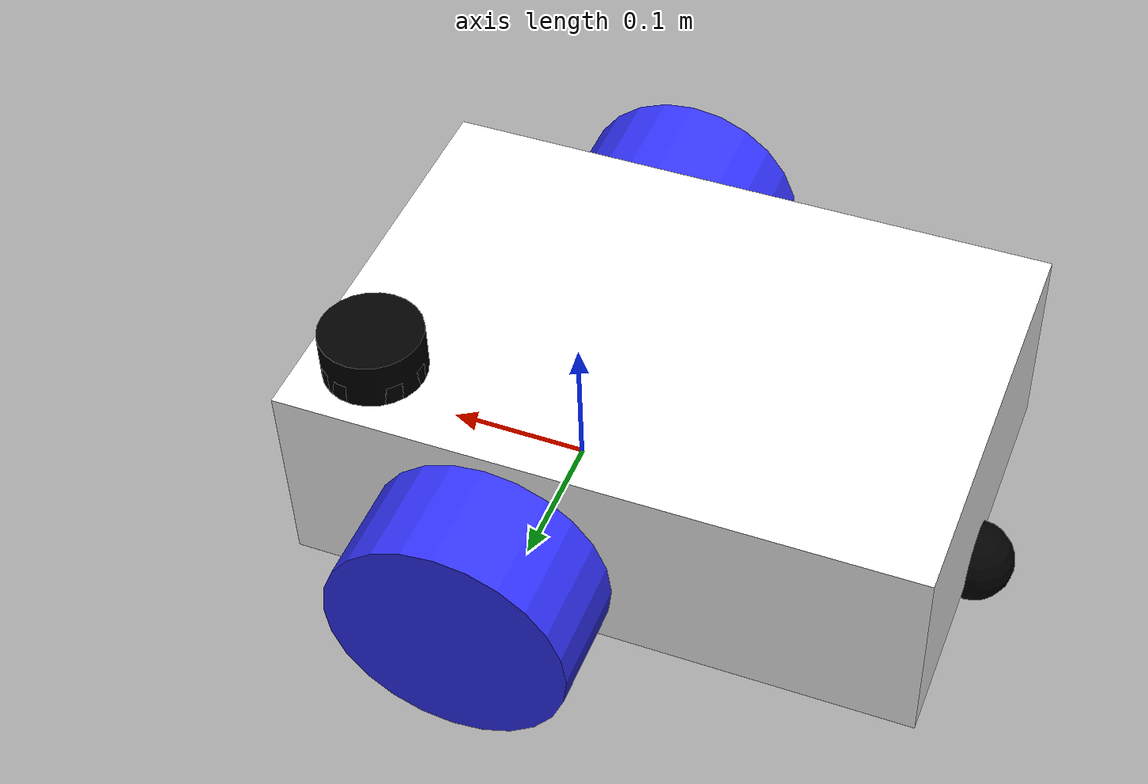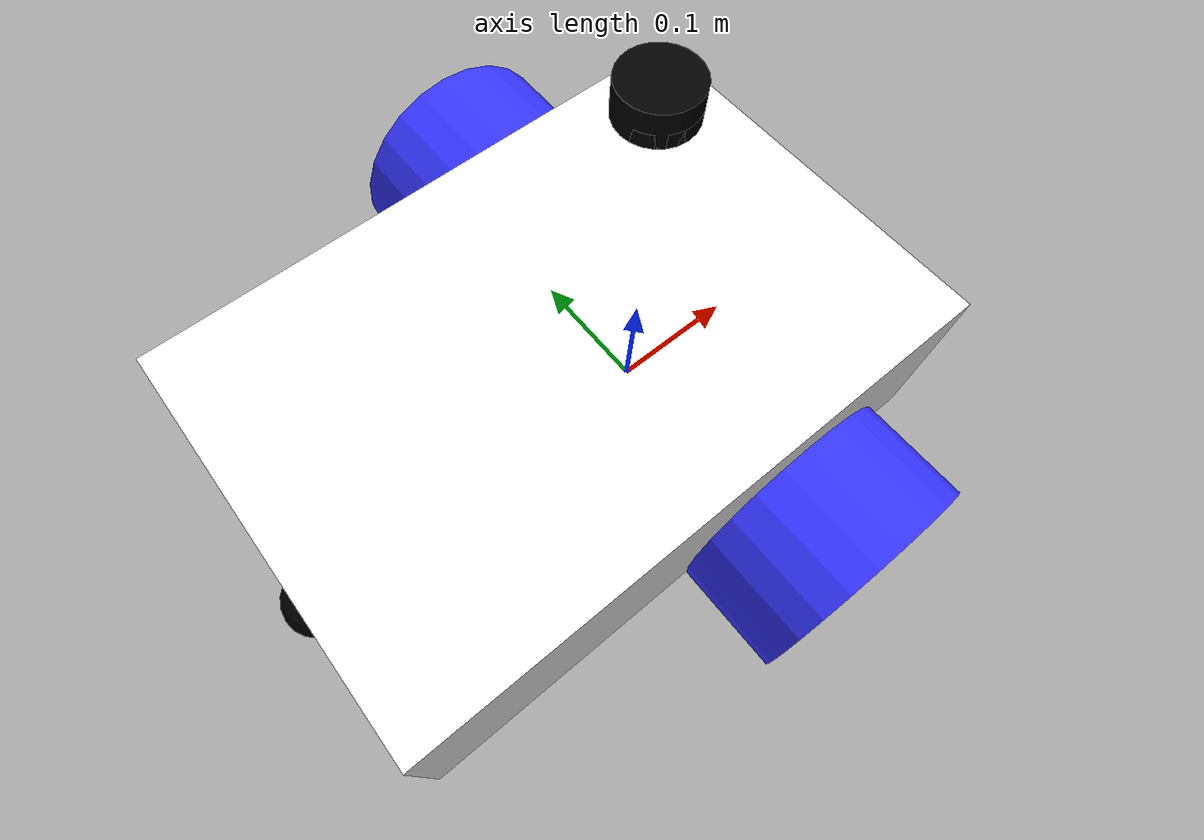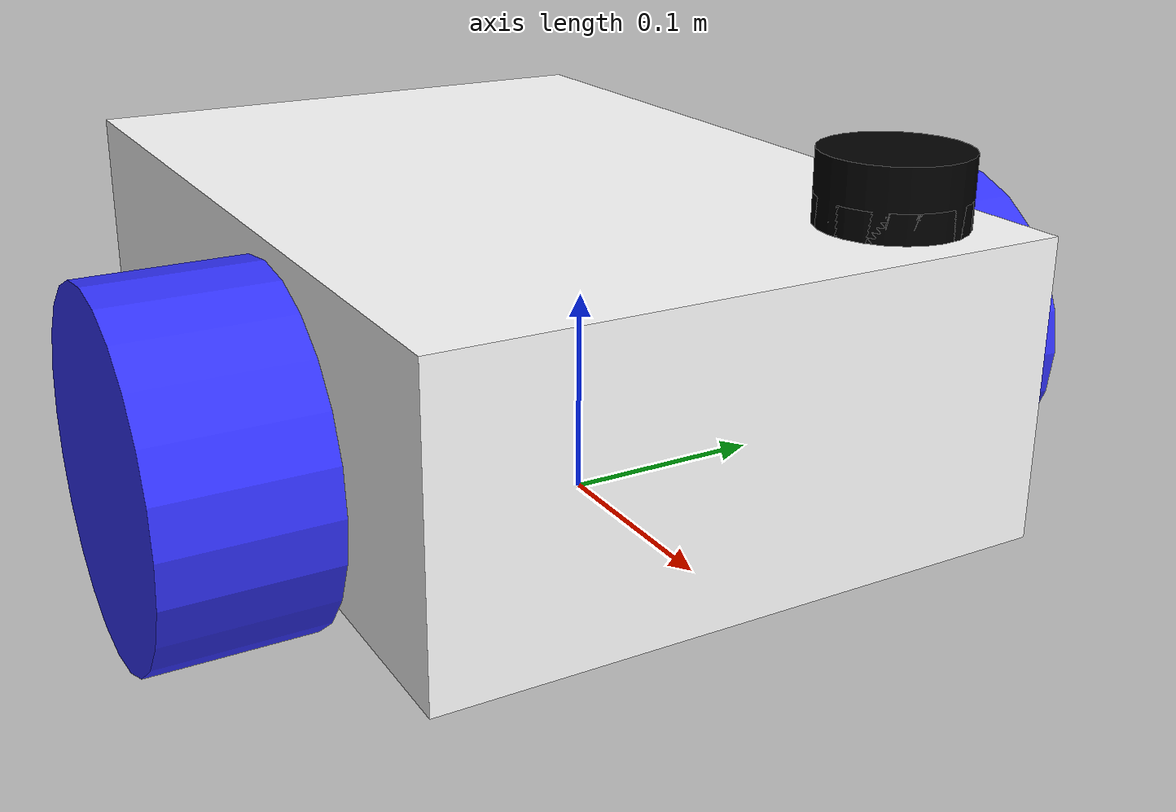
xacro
<?xml version="1.0"?>
<robot xmlns:xacro="http://www.ros.org/wiki/xacro"  name="robot">

    <xacro:include filename="robot_core.xacro"/>
    <xacro:include filename="lidar.xacro"/>
    <xacro:include filename="odrive.ros2_control.xacro" />
    <xacro:arg name="enable_joint0" default="true" />
    <xacro:arg name="enable_joint1" default="true" />

    <xacro:odrive_ros2_control
        name="odrive_ros2_control"
        enable_joint0="$(arg enable_joint0)"
        enable_joint1="$(arg enable_joint1)" />
</robot>

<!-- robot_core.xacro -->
<robot xmlns:xacro="http://www.ros.org/wiki/xacro">

    <xacro:include filename="inertial_macros.xacro"/>

    <material name="white">
        <color rgba="1 1 1 1"/>
    </material>

    <material name="orange">
        <color rgba="1 0.3 0.1 1"/>
    </material>

    <material name="blue">
        <color rgba="0.2 0.2 1 1"/>
    </material>

    <material name="black">
        <color rgba="0 0 0 1"/>
    </material>

    <!-- Base Link -->
    <link name="base_link">

    </link>

    <!-- Base_Footprint Link-->

    <joint name="base_footprint_joint" type="fixed">
	<parent link="base_link"/>
	<child link="base_footprint"/>
	<origin xyz="0 0 0" rpy="0 0 0"/>
    </joint>

    <link name="base_footprint">
    </link>

    <!-- Chassis Link -->

    <joint name="chassis_joint" type="fixed">
        <parent link="base_link"/>
        <child link="chassis"/>
        <origin xyz="-0.29 0 0"/>
    </joint>

    <link name="chassis">
        <visual>
            <origin xyz="0.22 0 0.074"/>
            <geometry>
                <box size="0.44 0.3 0.144"/>
            </geometry>
            <material name="white"/>
        </visual>

        <collision>
            <origin xyz="0.22 0 0.074"/>
            <geometry>
                <box size="0.44 0.3 0.144"/>
            </geometry>
        </collision>
        <xacro:inertial_box mass="2" x="0.44" y="0.3" z="0.144">
            <origin xyz="0.22 0 0.074" rpy="0 0 0"/>
        </xacro:inertial_box>
    </link>

    <gazebo reference="chassis">
        <material>Gazebo/White</material>
    </gazebo>

    <!-- Left Wheel Link -->

    <joint name="left_wheel_joint" type="continuous">
        <parent link="base_link"/>
        <child link="Left_wheel"/>
        <origin xyz="0 0.192 0.056" rpy="-${pi/2} 0 0"/>
        <axis xyz="0 0 1"/>
    </joint>

    <link name="Left_wheel">
        <visual>
            <geometry>
                <cylinder radius="0.084" length="0.077"/>
            </geometry>
            <material name="blue"/>
        </visual>

        <collision>
            <geometry>
                <cylinder radius="0.084" length="0.077"/>
            </geometry>
        </collision>
        <xacro:inertial_cylinder mass="0.5" length="0.077" radius="0.084">
            <origin xyz="0 0 0" rpy="0 0 0"/>
        </xacro:inertial_cylinder>
    </link>

    <gazebo reference="Left_wheel">
        <material>Gazebo/Blue</material>
    </gazebo>

    <!-- Right Wheel Link -->

    <joint name="right_wheel_joint" type="continuous">
        <parent link="base_link"/>
        <child link="Right_wheel"/>
        <origin xyz="0 -0.192 0.056" rpy="${pi/2} 0 0"/>
        <axis xyz="0 0 -1"/>
    </joint>

    <link name="Right_wheel">
        <visual>
            <geometry>
                <cylinder radius="0.084" length="0.077"/>
            </geometry>
            <material name="blue"/>
        </visual>
        <collision>
            <geometry>
                <cylinder radius="0.084" length="0.077"/>
            </geometry>
        </collision>
        <xacro:inertial_cylinder mass="0.5" length="0.077" radius="0.084">
            <origin xyz="0 0 0" rpy="0 0 0"/>
        </xacro:inertial_cylinder>
    </link>

    <gazebo reference="Right_wheel">
        <material>Gazebo/Blue</material>
    </gazebo>

     <!-- CASTER WHEEL LINK -->

    <joint name="caster_wheel_joint" type="fixed">
        <parent link="chassis"/>
        <child link="caster_wheel"/>
        <origin xyz="0 0 0"/>
    </joint>

    <link name="caster_wheel">
        <visual>
            <geometry>
                <sphere radius="0.028"/>
            </geometry>
            <material name="black"/>
        </visual>
        <collision>
            <geometry>
                <sphere radius="0.028"/>
            </geometry>
        </collision>
        <xacro:inertial_sphere mass="0.1" radius="0.028">
            <origin xyz="0 0 0" rpy="0 0 0"/>
        </xacro:inertial_sphere>
    </link>
    <gazebo reference="caster_wheel">
        <material>Gazebo/Black</material>
        <mu1 value="0.001"/>
        <mu2 value="0.001"/>
    </gazebo>

</robot>

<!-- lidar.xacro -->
<robot xmlns:xacro="http://www.ros.org/wiki/xacro" >

    <joint name="laser_joint" type="fixed">
        <parent link="chassis"/>
        <child link="laser_frame"/>
        <origin xyz="0.39 0.1 0.16" rpy="0 0 ${pi}"/>
    </joint>

    <link name="laser_frame">
        <visual>
            <geometry>
                <cylinder radius="0.035" length="0.04"/>
            </geometry>
            <material name="black"/>
        </visual>
        <visual>
            <origin xyz="0 0 -0.05"/>
            <geometry>
                <cylinder radius="0.035" length="0.1"/>
            </geometry>
            <material name="black"/>
        </visual>
        <collision>
            <geometry>
                <cylinder radius="0.035" length="0.04"/>
            </geometry>
        </collision>
        <xacro:inertial_cylinder mass="0.1" length="0.04" radius="0.035">
            <origin xyz="0 0 0" rpy="0 0 0"/>
        </xacro:inertial_cylinder>
    </link>

    <gazebo reference="laser_frame">
        <material>Gazebo/Black</material>

        <sensor name="laser" type="ray">
            <pose> 0 0 0 0 0 0 </pose>
            <visualize>true</visualize>
            <update_rate>10</update_rate>
            <ray>
                <scan>
                    <horizontal>
                        <samples>360</samples>
                        <min_angle>-3.14</min_angle>
                        <max_angle>3.14</max_angle>
                    </horizontal>
                </scan>
                <range>
                    <min>0.3</min>
                    <max>12</max>
                </range>
            </ray>
            <plugin name="laser_controller" filename="libgazebo_ros_ray_sensor.so">
                <ros>
                    <argument>~/out:=scan</argument>
                </ros>
                <output_type>sensor_msgs/LaserScan</output_type>
                <frame_name>laser_frame</frame_name>
            </plugin>
        </sensor>
    </gazebo>

</robot>
